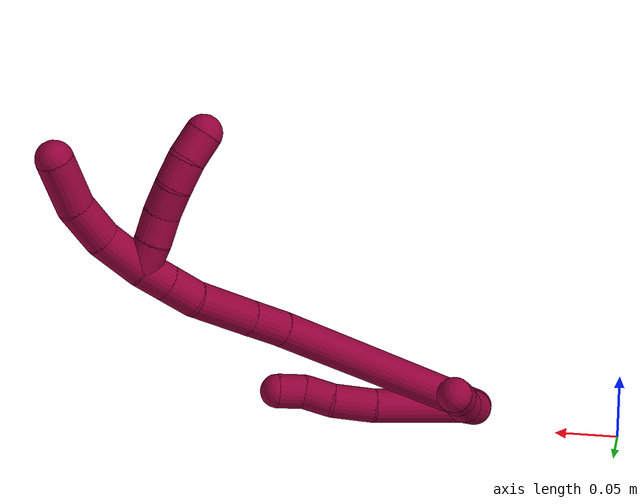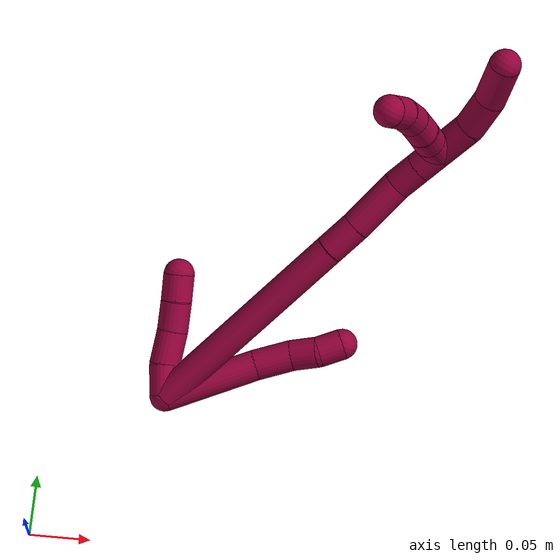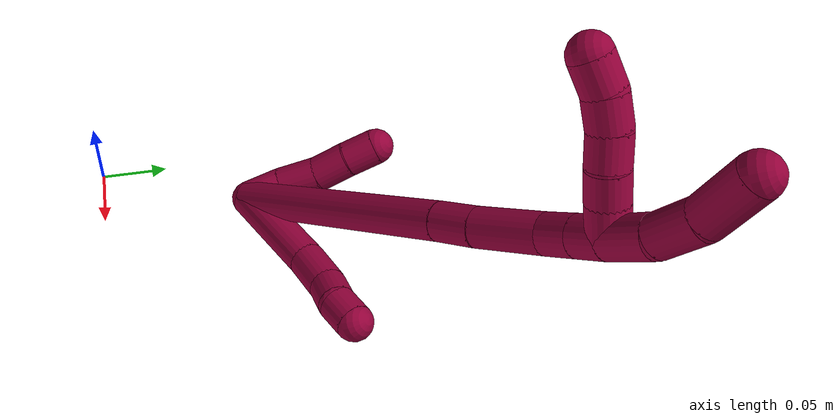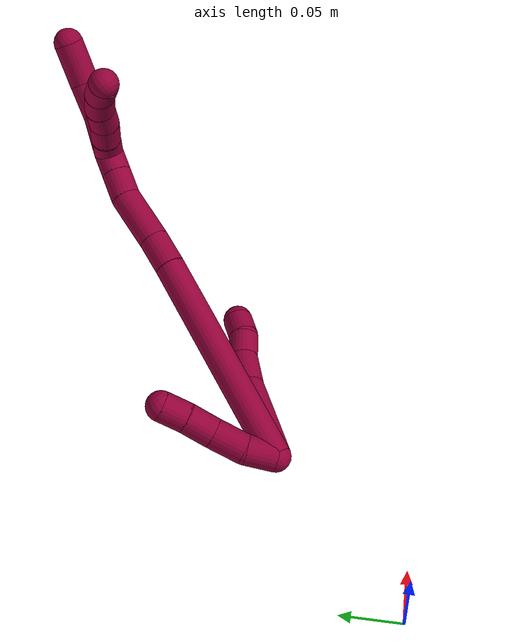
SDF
<sdf version="1.7">
 <world name="default">
  <model name="8">
   <static>0</static>
   <link name="8">
    <collision name="collision-cylinder-e_1_2_8">
     <pose>0.012433 0.024426 0.027188 -0.731933 0.327889 -0.126626</pose>
     <geometry><cylinder><radius>0.0125</radius><length>0.077211</length></cylinder></geometry>
     <surface>
      <friction><ode><mu>1.16</mu><mu2>1.16</mu2><slip1>0</slip1><slip2>0</slip2></ode></friction>
      <contact><ode><kp>1e+06</kp><kd>1</kd><max_vel>0</max_vel><min_depth>0.001</min_depth></ode></contact>
     </surface>
    </collision>
    <visual name="visual-cylinder-e_1_2_8">
     <pose>0.012433 0.024426 0.027188 -0.731933 0.327889 -0.126626</pose>
     <geometry><cylinder><radius>0.0125</radius><length>0.077211</length></cylinder></geometry>
     <material><ambient>0.584314 0 0.227451 1</ambient></material>
    </visual>
    <collision name="collision-cylinder-e_2_8_9">
     <pose>0.031679 0.057514 0.065238 -0.673193 0.455937 -0.162005</pose>
     <geometry><cylinder><radius>0.0125</radius><length>0.030948</length></cylinder></geometry>
     <surface>
      <friction><ode><mu>1.16</mu><mu2>1.16</mu2><slip1>0</slip1><slip2>0</slip2></ode></friction>
      <contact><ode><kp>1e+06</kp><kd>1</kd><max_vel>0</max_vel><min_depth>0.001</min_depth></ode></contact>
     </surface>
    </collision>
    <visual name="visual-cylinder-e_2_8_9">
     <pose>0.031679 0.057514 0.065238 -0.673193 0.455937 -0.162005</pose>
     <geometry><cylinder><radius>0.0125</radius><length>0.030948</length></cylinder></geometry>
     <material><ambient>0.584314 0 0.227451 1</ambient></material>
    </visual>
    <collision name="collision-cylinder-e_3_9_10">
     <pose>0.045231 0.070899 0.083228 -0.585224 0.667513 -0.208155</pose>
     <geometry><cylinder><radius>0.0125</radius><length>0.021773</length></cylinder></geometry>
     <surface>
      <friction><ode><mu>1.16</mu><mu2>1.16</mu2><slip1>0</slip1><slip2>0</slip2></ode></friction>
      <contact><ode><kp>1e+06</kp><kd>1</kd><max_vel>0</max_vel><min_depth>0.001</min_depth></ode></contact>
     </surface>
    </collision>
    <visual name="visual-cylinder-e_3_9_10">
     <pose>0.045231 0.070899 0.083228 -0.585224 0.667513 -0.208155</pose>
     <geometry><cylinder><radius>0.0125</radius><length>0.021773</length></cylinder></geometry>
     <material><ambient>0.584314 0 0.227451 1</ambient></material>
    </visual>
    <collision name="collision-cylinder-e_4_10_6">
     <pose>0.055453 0.081793 0.097459 -0.71516 0.354444 -0.13364</pose>
     <geometry><cylinder><radius>0.0125</radius><length>0.020068</length></cylinder></geometry>
     <surface>
      <friction><ode><mu>1.16</mu><mu2>1.16</mu2><slip1>0</slip1><slip2>0</slip2></ode></friction>
      <contact><ode><kp>1e+06</kp><kd>1</kd><max_vel>0</max_vel><min_depth>0.001</min_depth></ode></contact>
     </surface>
    </collision>
    <visual name="visual-cylinder-e_4_10_6">
     <pose>0.055453 0.081793 0.097459 -0.71516 0.354444 -0.13364</pose>
     <geometry><cylinder><radius>0.0125</radius><length>0.020068</length></cylinder></geometry>
     <material><ambient>0.584314 0 0.227451 1</ambient></material>
    </visual>
    <collision name="collision-cylinder-e_1_2_11">
     <pose>-0.008098 -0.000483 0.00974 0.049557 -0.692998 -0.017897</pose>
     <geometry><cylinder><radius>0.0125</radius><length>0.025351</length></cylinder></geometry>
     <surface>
      <friction><ode><mu>1.16</mu><mu2>1.16</mu2><slip1>0</slip1><slip2>0</slip2></ode></friction>
      <contact><ode><kp>1e+06</kp><kd>1</kd><max_vel>0</max_vel><min_depth>0.001</min_depth></ode></contact>
     </surface>
    </collision>
    <visual name="visual-cylinder-e_1_2_11">
     <pose>-0.008098 -0.000483 0.00974 0.049557 -0.692998 -0.017897</pose>
     <geometry><cylinder><radius>0.0125</radius><length>0.025351</length></cylinder></geometry>
     <material><ambient>0.584314 0 0.227451 1</ambient></material>
    </visual>
    <collision name="collision-cylinder-e_2_11_12">
     <pose>-0.022266 -0.000331 0.032216 -0.049816 -0.444314 0.011255</pose>
     <geometry><cylinder><radius>0.0125</radius><length>0.028248</length></cylinder></geometry>
     <surface>
      <friction><ode><mu>1.16</mu><mu2>1.16</mu2><slip1>0</slip1><slip2>0</slip2></ode></friction>
      <contact><ode><kp>1e+06</kp><kd>1</kd><max_vel>0</max_vel><min_depth>0.001</min_depth></ode></contact>
     </surface>
    </collision>
    <visual name="visual-cylinder-e_2_11_12">
     <pose>-0.022266 -0.000331 0.032216 -0.049816 -0.444314 0.011255</pose>
     <geometry><cylinder><radius>0.0125</radius><length>0.028248</length></cylinder></geometry>
     <material><ambient>0.584314 0 0.227451 1</ambient></material>
    </visual>
    <collision name="collision-cylinder-e_3_12_13">
     <pose>-0.033287 -0.001165 0.056103 0.130999 -0.414588 -0.027589</pose>
     <geometry><cylinder><radius>0.0125</radius><length>0.024575</length></cylinder></geometry>
     <surface>
      <friction><ode><mu>1.16</mu><mu2>1.16</mu2><slip1>0</slip1><slip2>0</slip2></ode></friction>
      <contact><ode><kp>1e+06</kp><kd>1</kd><max_vel>0</max_vel><min_depth>0.001</min_depth></ode></contact>
     </surface>
    </collision>
    <visual name="visual-cylinder-e_3_12_13">
     <pose>-0.033287 -0.001165 0.056103 0.130999 -0.414588 -0.027589</pose>
     <geometry><cylinder><radius>0.0125</radius><length>0.024575</length></cylinder></geometry>
     <material><ambient>0.584314 0 0.227451 1</ambient></material>
    </visual>
    <collision name="collision-cylinder-e_4_13_5">
     <pose>-0.04341 -0.003538 0.076819 0.094251 -0.493939 -0.023779</pose>
     <geometry><cylinder><radius>0.0125</radius><length>0.021826</length></cylinder></geometry>
     <surface>
      <friction><ode><mu>1.16</mu><mu2>1.16</mu2><slip1>0</slip1><slip2>0</slip2></ode></friction>
      <contact><ode><kp>1e+06</kp><kd>1</kd><max_vel>0</max_vel><min_depth>0.001</min_depth></ode></contact>
     </surface>
    </collision>
    <visual name="visual-cylinder-e_4_13_5">
     <pose>-0.04341 -0.003538 0.076819 0.094251 -0.493939 -0.023779</pose>
     <geometry><cylinder><radius>0.0125</radius><length>0.021826</length></cylinder></geometry>
     <material><ambient>0.584314 0 0.227451 1</ambient></material>
    </visual>
    <collision name="collision-cylinder-e_1_2_14">
     <pose>0.0161 0.021812 0.086807 -0.246177 0.177978 -0.022076</pose>
     <geometry><cylinder><radius>0.0125</radius><length>0.181883</length></cylinder></geometry>
     <surface>
      <friction><ode><mu>1.16</mu><mu2>1.16</mu2><slip1>0</slip1><slip2>0</slip2></ode></friction>
      <contact><ode><kp>1e+06</kp><kd>1</kd><max_vel>0</max_vel><min_depth>0.001</min_depth></ode></contact>
     </surface>
    </collision>
    <visual name="visual-cylinder-e_1_2_14">
     <pose>0.0161 0.021812 0.086807 -0.246177 0.177978 -0.022076</pose>
     <geometry><cylinder><radius>0.0125</radius><length>0.181883</length></cylinder></geometry>
     <material><ambient>0.584314 0 0.227451 1</ambient></material>
    </visual>
    <collision name="collision-cylinder-e_2_14_15">
     <pose>0.034363 0.047568 0.187017 -0.286156 0.153543 -0.022162</pose>
     <geometry><cylinder><radius>0.0125</radius><length>0.028276</length></cylinder></geometry>
     <surface>
      <friction><ode><mu>1.16</mu><mu2>1.16</mu2><slip1>0</slip1><slip2>0</slip2></ode></friction>
      <contact><ode><kp>1e+06</kp><kd>1</kd><max_vel>0</max_vel><min_depth>0.001</min_depth></ode></contact>
     </surface>
    </collision>
    <visual name="visual-cylinder-e_2_14_15">
     <pose>0.034363 0.047568 0.187017 -0.286156 0.153543 -0.022162</pose>
     <geometry><cylinder><radius>0.0125</radius><length>0.028276</length></cylinder></geometry>
     <material><ambient>0.584314 0 0.227451 1</ambient></material>
    </visual>
    <collision name="collision-cylinder-e_3_15_16">
     <pose>0.03888 0.057293 0.222576 -0.255248 0.102489 -0.013163</pose>
     <geometry><cylinder><radius>0.0125</radius><length>0.046037</length></cylinder></geometry>
     <surface>
      <friction><ode><mu>1.16</mu><mu2>1.16</mu2><slip1>0</slip1><slip2>0</slip2></ode></friction>
      <contact><ode><kp>1e+06</kp><kd>1</kd><max_vel>0</max_vel><min_depth>0.001</min_depth></ode></contact>
     </surface>
    </collision>
    <visual name="visual-cylinder-e_3_15_16">
     <pose>0.03888 0.057293 0.222576 -0.255248 0.102489 -0.013163</pose>
     <geometry><cylinder><radius>0.0125</radius><length>0.046037</length></cylinder></geometry>
     <material><ambient>0.584314 0 0.227451 1</ambient></material>
    </visual>
    <collision name="collision-cylinder-e_4_16_17">
     <pose>0.044742 0.064721 0.255705 -0.148961 0.306099 -0.02302</pose>
     <geometry><cylinder><radius>0.0125</radius><length>0.023273</length></cylinder></geometry>
     <surface>
      <friction><ode><mu>1.16</mu><mu2>1.16</mu2><slip1>0</slip1><slip2>0</slip2></ode></friction>
      <contact><ode><kp>1e+06</kp><kd>1</kd><max_vel>0</max_vel><min_depth>0.001</min_depth></ode></contact>
     </surface>
    </collision>
    <visual name="visual-cylinder-e_4_16_17">
     <pose>0.044742 0.064721 0.255705 -0.148961 0.306099 -0.02302</pose>
     <geometry><cylinder><radius>0.0125</radius><length>0.023273</length></cylinder></geometry>
     <material><ambient>0.584314 0 0.227451 1</ambient></material>
    </visual>
    <collision name="collision-cylinder-e_5_17_1">
     <pose>0.051346 0.067828 0.276355 -0.149716 0.306512 -0.023168</pose>
     <geometry><cylinder><radius>0.0125</radius><length>0.02053</length></cylinder></geometry>
     <surface>
      <friction><ode><mu>1.16</mu><mu2>1.16</mu2><slip1>0</slip1><slip2>0</slip2></ode></friction>
      <contact><ode><kp>1e+06</kp><kd>1</kd><max_vel>0</max_vel><min_depth>0.001</min_depth></ode></contact>
     </surface>
    </collision>
    <visual name="visual-cylinder-e_5_17_1">
     <pose>0.051346 0.067828 0.276355 -0.149716 0.306512 -0.023168</pose>
     <geometry><cylinder><radius>0.0125</radius><length>0.02053</length></cylinder></geometry>
     <material><ambient>0.584314 0 0.227451 1</ambient></material>
    </visual>
    <collision name="collision-cylinder-e_1_1_18">
     <pose>0.06055 0.069839 0.301609 -0.035392 0.373416 -0.006687</pose>
     <geometry><cylinder><radius>0.0125</radius><length>0.03348</length></cylinder></geometry>
     <surface>
      <friction><ode><mu>1.16</mu><mu2>1.16</mu2><slip1>0</slip1><slip2>0</slip2></ode></friction>
      <contact><ode><kp>1e+06</kp><kd>1</kd><max_vel>0</max_vel><min_depth>0.001</min_depth></ode></contact>
     </surface>
    </collision>
    <visual name="visual-cylinder-e_1_1_18">
     <pose>0.06055 0.069839 0.301609 -0.035392 0.373416 -0.006687</pose>
     <geometry><cylinder><radius>0.0125</radius><length>0.03348</length></cylinder></geometry>
     <material><ambient>0.584314 0 0.227451 1</ambient></material>
    </visual>
    <collision name="collision-cylinder-e_2_18_19">
     <pose>0.070014 0.06752 0.331524 0.197617 0.225676 0.022466</pose>
     <geometry><cylinder><radius>0.0125</radius><length>0.030007</length></cylinder></geometry>
     <surface>
      <friction><ode><mu>1.16</mu><mu2>1.16</mu2><slip1>0</slip1><slip2>0</slip2></ode></friction>
      <contact><ode><kp>1e+06</kp><kd>1</kd><max_vel>0</max_vel><min_depth>0.001</min_depth></ode></contact>
     </surface>
    </collision>
    <visual name="visual-cylinder-e_2_18_19">
     <pose>0.070014 0.06752 0.331524 0.197617 0.225676 0.022466</pose>
     <geometry><cylinder><radius>0.0125</radius><length>0.030007</length></cylinder></geometry>
     <material><ambient>0.584314 0 0.227451 1</ambient></material>
    </visual>
    <collision name="collision-cylinder-e_3_19_4">
     <pose>0.076767 0.056862 0.362022 0.449049 0.187101 0.042848</pose>
     <geometry><cylinder><radius>0.0125</radius><length>0.036513</length></cylinder></geometry>
     <surface>
      <friction><ode><mu>1.16</mu><mu2>1.16</mu2><slip1>0</slip1><slip2>0</slip2></ode></friction>
      <contact><ode><kp>1e+06</kp><kd>1</kd><max_vel>0</max_vel><min_depth>0.001</min_depth></ode></contact>
     </surface>
    </collision>
    <visual name="visual-cylinder-e_3_19_4">
     <pose>0.076767 0.056862 0.362022 0.449049 0.187101 0.042848</pose>
     <geometry><cylinder><radius>0.0125</radius><length>0.036513</length></cylinder></geometry>
     <material><ambient>0.584314 0 0.227451 1</ambient></material>
    </visual>
    <collision name="collision-cylinder-e_1_1_20">
     <pose>0.055228 0.059943 0.289505 1.21503 0.078613 0.054668</pose>
     <geometry><cylinder><radius>0.0125</radius><length>0.02</length></cylinder></geometry>
     <surface>
      <friction><ode><mu>1.16</mu><mu2>1.16</mu2><slip1>0</slip1><slip2>0</slip2></ode></friction>
      <contact><ode><kp>1e+06</kp><kd>1</kd><max_vel>0</max_vel><min_depth>0.001</min_depth></ode></contact>
     </surface>
    </collision>
    <visual name="visual-cylinder-e_1_1_20">
     <pose>0.055228 0.059943 0.289505 1.21503 0.078613 0.054668</pose>
     <geometry><cylinder><radius>0.0125</radius><length>0.02</length></cylinder></geometry>
     <material><ambient>0.584314 0 0.227451 1</ambient></material>
    </visual>
    <collision name="collision-cylinder-e_2_20_21">
     <pose>0.0577 0.041572 0.296937 1.15737 0.169483 0.110874</pose>
     <geometry><cylinder><radius>0.0125</radius><length>0.02</length></cylinder></geometry>
     <surface>
      <friction><ode><mu>1.16</mu><mu2>1.16</mu2><slip1>0</slip1><slip2>0</slip2></ode></friction>
      <contact><ode><kp>1e+06</kp><kd>1</kd><max_vel>0</max_vel><min_depth>0.001</min_depth></ode></contact>
     </surface>
    </collision>
    <visual name="visual-cylinder-e_2_20_21">
     <pose>0.0577 0.041572 0.296937 1.15737 0.169483 0.110874</pose>
     <geometry><cylinder><radius>0.0125</radius><length>0.02</length></cylinder></geometry>
     <material><ambient>0.584314 0 0.227451 1</ambient></material>
    </visual>
    <collision name="collision-cylinder-e_3_21_22">
     <pose>0.05959 0.023347 0.304814 1.16819 0.020327 0.013437</pose>
     <geometry><cylinder><radius>0.0125</radius><length>0.02</length></cylinder></geometry>
     <surface>
      <friction><ode><mu>1.16</mu><mu2>1.16</mu2><slip1>0</slip1><slip2>0</slip2></ode></friction>
      <contact><ode><kp>1e+06</kp><kd>1</kd><max_vel>0</max_vel><min_depth>0.001</min_depth></ode></contact>
     </surface>
    </collision>
    <visual name="visual-cylinder-e_3_21_22">
     <pose>0.05959 0.023347 0.304814 1.16819 0.020327 0.013437</pose>
     <geometry><cylinder><radius>0.0125</radius><length>0.02</length></cylinder></geometry>
     <material><ambient>0.584314 0 0.227451 1</ambient></material>
    </visual>
    <collision name="collision-cylinder-e_4_22_23">
     <pose>0.06115 0.004581 0.311307 1.30784 0.136048 0.104335</pose>
     <geometry><cylinder><radius>0.0125</radius><length>0.02</length></cylinder></geometry>
     <surface>
      <friction><ode><mu>1.16</mu><mu2>1.16</mu2><slip1>0</slip1><slip2>0</slip2></ode></friction>
      <contact><ode><kp>1e+06</kp><kd>1</kd><max_vel>0</max_vel><min_depth>0.001</min_depth></ode></contact>
     </surface>
    </collision>
    <visual name="visual-cylinder-e_4_22_23">
     <pose>0.06115 0.004581 0.311307 1.30784 0.136048 0.104335</pose>
     <geometry><cylinder><radius>0.0125</radius><length>0.02</length></cylinder></geometry>
     <material><ambient>0.584314 0 0.227451 1</ambient></material>
    </visual>
    <collision name="collision-cylinder-e_5_23_3">
     <pose>0.064478 -0.014778 0.314349 1.52321 0.198445 0.189276</pose>
     <geometry><cylinder><radius>0.0125</radius><length>0.02</length></cylinder></geometry>
     <surface>
      <friction><ode><mu>1.16</mu><mu2>1.16</mu2><slip1>0</slip1><slip2>0</slip2></ode></friction>
      <contact><ode><kp>1e+06</kp><kd>1</kd><max_vel>0</max_vel><min_depth>0.001</min_depth></ode></contact>
     </surface>
    </collision>
    <visual name="visual-cylinder-e_5_23_3">
     <pose>0.064478 -0.014778 0.314349 1.52321 0.198445 0.189276</pose>
     <geometry><cylinder><radius>0.0125</radius><length>0.02</length></cylinder></geometry>
     <material><ambient>0.584314 0 0.227451 1</ambient></material>
    </visual>
    <collision name="collision-sphere-3">
     <pose>0.066449 -0.024571 0.314815 0 -0 0</pose>
     <geometry><sphere><radius>0.0125</radius></sphere></geometry>
     <surface>
      <friction><ode><mu>1.16</mu><mu2>1.16</mu2><slip1>0</slip1><slip2>0</slip2></ode></friction>
      <contact><ode><kp>1e+06</kp><kd>1</kd><max_vel>0</max_vel><min_depth>0.001</min_depth></ode></contact>
     </surface>
    </collision>
    <visual name="visual-sphere-3">
     <pose>0.066449 -0.024571 0.314815 0 -0 0</pose>
     <geometry><sphere><radius>0.0125</radius></sphere></geometry>
     <material><ambient>0.584314 0 0.227451 1</ambient></material>
    </visual>
    <collision name="collision-sphere-23">
     <pose>0.062506 -0.004986 0.313882 0 -0 0</pose>
     <geometry><sphere><radius>0.0125</radius></sphere></geometry>
     <surface>
      <friction><ode><mu>1.16</mu><mu2>1.16</mu2><slip1>0</slip1><slip2>0</slip2></ode></friction>
      <contact><ode><kp>1e+06</kp><kd>1</kd><max_vel>0</max_vel><min_depth>0.001</min_depth></ode></contact>
     </surface>
    </collision>
    <visual name="visual-sphere-23">
     <pose>0.062506 -0.004986 0.313882 0 -0 0</pose>
     <geometry><sphere><radius>0.0125</radius></sphere></geometry>
     <material><ambient>0.584314 0 0.227451 1</ambient></material>
    </visual>
    <collision name="collision-sphere-22">
     <pose>0.059794 0.014148 0.308732 0 -0 0</pose>
     <geometry><sphere><radius>0.0125</radius></sphere></geometry>
     <surface>
      <friction><ode><mu>1.16</mu><mu2>1.16</mu2><slip1>0</slip1><slip2>0</slip2></ode></friction>
      <contact><ode><kp>1e+06</kp><kd>1</kd><max_vel>0</max_vel><min_depth>0.001</min_depth></ode></contact>
     </surface>
    </collision>
    <visual name="visual-sphere-22">
     <pose>0.059794 0.014148 0.308732 0 -0 0</pose>
     <geometry><sphere><radius>0.0125</radius></sphere></geometry>
     <material><ambient>0.584314 0 0.227451 1</ambient></material>
    </visual>
    <collision name="collision-sphere-21">
     <pose>0.059387 0.032545 0.300897 0 -0 0</pose>
     <geometry><sphere><radius>0.0125</radius></sphere></geometry>
     <surface>
      <friction><ode><mu>1.16</mu><mu2>1.16</mu2><slip1>0</slip1><slip2>0</slip2></ode></friction>
      <contact><ode><kp>1e+06</kp><kd>1</kd><max_vel>0</max_vel><min_depth>0.001</min_depth></ode></contact>
     </surface>
    </collision>
    <visual name="visual-sphere-21">
     <pose>0.059387 0.032545 0.300897 0 -0 0</pose>
     <geometry><sphere><radius>0.0125</radius></sphere></geometry>
     <material><ambient>0.584314 0 0.227451 1</ambient></material>
    </visual>
    <collision name="collision-sphere-20">
     <pose>0.056014 0.050598 0.292977 0 -0 0</pose>
     <geometry><sphere><radius>0.0125</radius></sphere></geometry>
     <surface>
      <friction><ode><mu>1.16</mu><mu2>1.16</mu2><slip1>0</slip1><slip2>0</slip2></ode></friction>
      <contact><ode><kp>1e+06</kp><kd>1</kd><max_vel>0</max_vel><min_depth>0.001</min_depth></ode></contact>
     </surface>
    </collision>
    <visual name="visual-sphere-20">
     <pose>0.056014 0.050598 0.292977 0 -0 0</pose>
     <geometry><sphere><radius>0.0125</radius></sphere></geometry>
     <material><ambient>0.584314 0 0.227451 1</ambient></material>
    </visual>
    <collision name="collision-sphere-4">
     <pose>0.080163 0.049075 0.378182 0 -0 0</pose>
     <geometry><sphere><radius>0.0125</radius></sphere></geometry>
     <surface>
      <friction><ode><mu>1.16</mu><mu2>1.16</mu2><slip1>0</slip1><slip2>0</slip2></ode></friction>
      <contact><ode><kp>1e+06</kp><kd>1</kd><max_vel>0</max_vel><min_depth>0.001</min_depth></ode></contact>
     </surface>
    </collision>
    <visual name="visual-sphere-4">
     <pose>0.080163 0.049075 0.378182 0 -0 0</pose>
     <geometry><sphere><radius>0.0125</radius></sphere></geometry>
     <material><ambient>0.584314 0 0.227451 1</ambient></material>
    </visual>
    <collision name="collision-sphere-11">
     <pose>-0.016195 -0.000966 0.019479 0 -0 0</pose>
     <geometry><sphere><radius>0.0125</radius></sphere></geometry>
     <surface>
      <friction><ode><mu>1.16</mu><mu2>1.16</mu2><slip1>0</slip1><slip2>0</slip2></ode></friction>
      <contact><ode><kp>1e+06</kp><kd>1</kd><max_vel>0</max_vel><min_depth>0.001</min_depth></ode></contact>
     </surface>
    </collision>
    <visual name="visual-sphere-11">
     <pose>-0.016195 -0.000966 0.019479 0 -0 0</pose>
     <geometry><sphere><radius>0.0125</radius></sphere></geometry>
     <material><ambient>0.584314 0 0.227451 1</ambient></material>
    </visual>
    <collision name="collision-sphere-6">
     <pose>0.058935 0.087963 0.104564 0 -0 0</pose>
     <geometry><sphere><radius>0.0125</radius></sphere></geometry>
     <surface>
      <friction><ode><mu>1.16</mu><mu2>1.16</mu2><slip1>0</slip1><slip2>0</slip2></ode></friction>
      <contact><ode><kp>1e+06</kp><kd>1</kd><max_vel>0</max_vel><min_depth>0.001</min_depth></ode></contact>
     </surface>
    </collision>
    <visual name="visual-sphere-6">
     <pose>0.058935 0.087963 0.104564 0 -0 0</pose>
     <geometry><sphere><radius>0.0125</radius></sphere></geometry>
     <material><ambient>0.584314 0 0.227451 1</ambient></material>
    </visual>
    <collision name="collision-sphere-10">
     <pose>0.05197 0.075622 0.090355 0 -0 0</pose>
     <geometry><sphere><radius>0.0125</radius></sphere></geometry>
     <surface>
      <friction><ode><mu>1.16</mu><mu2>1.16</mu2><slip1>0</slip1><slip2>0</slip2></ode></friction>
      <contact><ode><kp>1e+06</kp><kd>1</kd><max_vel>0</max_vel><min_depth>0.001</min_depth></ode></contact>
     </surface>
    </collision>
    <visual name="visual-sphere-10">
     <pose>0.05197 0.075622 0.090355 0 -0 0</pose>
     <geometry><sphere><radius>0.0125</radius></sphere></geometry>
     <material><ambient>0.584314 0 0.227451 1</ambient></material>
    </visual>
    <collision name="collision-sphere-9">
     <pose>0.038492 0.066176 0.076101 0 -0 0</pose>
     <geometry><sphere><radius>0.0125</radius></sphere></geometry>
     <surface>
      <friction><ode><mu>1.16</mu><mu2>1.16</mu2><slip1>0</slip1><slip2>0</slip2></ode></friction>
      <contact><ode><kp>1e+06</kp><kd>1</kd><max_vel>0</max_vel><min_depth>0.001</min_depth></ode></contact>
     </surface>
    </collision>
    <visual name="visual-sphere-9">
     <pose>0.038492 0.066176 0.076101 0 -0 0</pose>
     <geometry><sphere><radius>0.0125</radius></sphere></geometry>
     <material><ambient>0.584314 0 0.227451 1</ambient></material>
    </visual>
    <collision name="collision-sphere-2">
     <geometry><sphere><radius>0.0125</radius></sphere></geometry>
     <surface>
      <friction><ode><mu>1.16</mu><mu2>1.16</mu2><slip1>0</slip1><slip2>0</slip2></ode></friction>
      <contact><ode><kp>1e+06</kp><kd>1</kd><max_vel>0</max_vel><min_depth>0.001</min_depth></ode></contact>
     </surface>
    </collision>
    <visual name="visual-sphere-2">
     <geometry><sphere><radius>0.0125</radius></sphere></geometry>
     <material><ambient>0.584314 0 0.227451 1</ambient></material>
    </visual>
    <collision name="collision-sphere-19">
     <pose>0.073371 0.064649 0.345863 0 -0 0</pose>
     <geometry><sphere><radius>0.0125</radius></sphere></geometry>
     <surface>
      <friction><ode><mu>1.16</mu><mu2>1.16</mu2><slip1>0</slip1><slip2>0</slip2></ode></friction>
      <contact><ode><kp>1e+06</kp><kd>1</kd><max_vel>0</max_vel><min_depth>0.001</min_depth></ode></contact>
     </surface>
    </collision>
    <visual name="visual-sphere-19">
     <pose>0.073371 0.064649 0.345863 0 -0 0</pose>
     <geometry><sphere><radius>0.0125</radius></sphere></geometry>
     <material><ambient>0.584314 0 0.227451 1</ambient></material>
    </visual>
    <collision name="collision-sphere-8">
     <pose>0.024866 0.048852 0.054376 0 -0 0</pose>
     <geometry><sphere><radius>0.0125</radius></sphere></geometry>
     <surface>
      <friction><ode><mu>1.16</mu><mu2>1.16</mu2><slip1>0</slip1><slip2>0</slip2></ode></friction>
      <contact><ode><kp>1e+06</kp><kd>1</kd><max_vel>0</max_vel><min_depth>0.001</min_depth></ode></contact>
     </surface>
    </collision>
    <visual name="visual-sphere-8">
     <pose>0.024866 0.048852 0.054376 0 -0 0</pose>
     <geometry><sphere><radius>0.0125</radius></sphere></geometry>
     <material><ambient>0.584314 0 0.227451 1</ambient></material>
    </visual>
    <collision name="collision-sphere-12">
     <pose>-0.028337 0.000304 0.044953 0 -0 0</pose>
     <geometry><sphere><radius>0.0125</radius></sphere></geometry>
     <surface>
      <friction><ode><mu>1.16</mu><mu2>1.16</mu2><slip1>0</slip1><slip2>0</slip2></ode></friction>
      <contact><ode><kp>1e+06</kp><kd>1</kd><max_vel>0</max_vel><min_depth>0.001</min_depth></ode></contact>
     </surface>
    </collision>
    <visual name="visual-sphere-12">
     <pose>-0.028337 0.000304 0.044953 0 -0 0</pose>
     <geometry><sphere><radius>0.0125</radius></sphere></geometry>
     <material><ambient>0.584314 0 0.227451 1</ambient></material>
    </visual>
    <collision name="collision-sphere-13">
     <pose>-0.038236 -0.002634 0.067253 0 -0 0</pose>
     <geometry><sphere><radius>0.0125</radius></sphere></geometry>
     <surface>
      <friction><ode><mu>1.16</mu><mu2>1.16</mu2><slip1>0</slip1><slip2>0</slip2></ode></friction>
      <contact><ode><kp>1e+06</kp><kd>1</kd><max_vel>0</max_vel><min_depth>0.001</min_depth></ode></contact>
     </surface>
    </collision>
    <visual name="visual-sphere-13">
     <pose>-0.038236 -0.002634 0.067253 0 -0 0</pose>
     <geometry><sphere><radius>0.0125</radius></sphere></geometry>
     <material><ambient>0.584314 0 0.227451 1</ambient></material>
    </visual>
    <collision name="collision-sphere-5">
     <pose>-0.048584 -0.004443 0.086385 0 -0 0</pose>
     <geometry><sphere><radius>0.0125</radius></sphere></geometry>
     <surface>
      <friction><ode><mu>1.16</mu><mu2>1.16</mu2><slip1>0</slip1><slip2>0</slip2></ode></friction>
      <contact><ode><kp>1e+06</kp><kd>1</kd><max_vel>0</max_vel><min_depth>0.001</min_depth></ode></contact>
     </surface>
    </collision>
    <visual name="visual-sphere-5">
     <pose>-0.048584 -0.004443 0.086385 0 -0 0</pose>
     <geometry><sphere><radius>0.0125</radius></sphere></geometry>
     <material><ambient>0.584314 0 0.227451 1</ambient></material>
    </visual>
    <collision name="collision-sphere-14">
     <pose>0.032201 0.043624 0.173613 0 -0 0</pose>
     <geometry><sphere><radius>0.0125</radius></sphere></geometry>
     <surface>
      <friction><ode><mu>1.16</mu><mu2>1.16</mu2><slip1>0</slip1><slip2>0</slip2></ode></friction>
      <contact><ode><kp>1e+06</kp><kd>1</kd><max_vel>0</max_vel><min_depth>0.001</min_depth></ode></contact>
     </surface>
    </collision>
    <visual name="visual-sphere-14">
     <pose>0.032201 0.043624 0.173613 0 -0 0</pose>
     <geometry><sphere><radius>0.0125</radius></sphere></geometry>
     <material><ambient>0.584314 0 0.227451 1</ambient></material>
    </visual>
    <collision name="collision-sphere-15">
     <pose>0.036525 0.051512 0.200421 0 -0 0</pose>
     <geometry><sphere><radius>0.0125</radius></sphere></geometry>
     <surface>
      <friction><ode><mu>1.16</mu><mu2>1.16</mu2><slip1>0</slip1><slip2>0</slip2></ode></friction>
      <contact><ode><kp>1e+06</kp><kd>1</kd><max_vel>0</max_vel><min_depth>0.001</min_depth></ode></contact>
     </surface>
    </collision>
    <visual name="visual-sphere-15">
     <pose>0.036525 0.051512 0.200421 0 -0 0</pose>
     <geometry><sphere><radius>0.0125</radius></sphere></geometry>
     <material><ambient>0.584314 0 0.227451 1</ambient></material>
    </visual>
    <collision name="collision-sphere-16">
     <pose>0.041235 0.063075 0.244732 0 -0 0</pose>
     <geometry><sphere><radius>0.0125</radius></sphere></geometry>
     <surface>
      <friction><ode><mu>1.16</mu><mu2>1.16</mu2><slip1>0</slip1><slip2>0</slip2></ode></friction>
      <contact><ode><kp>1e+06</kp><kd>1</kd><max_vel>0</max_vel><min_depth>0.001</min_depth></ode></contact>
     </surface>
    </collision>
    <visual name="visual-sphere-16">
     <pose>0.041235 0.063075 0.244732 0 -0 0</pose>
     <geometry><sphere><radius>0.0125</radius></sphere></geometry>
     <material><ambient>0.584314 0 0.227451 1</ambient></material>
    </visual>
    <collision name="collision-sphere-17">
     <pose>0.048248 0.066368 0.266678 0 -0 0</pose>
     <geometry><sphere><radius>0.0125</radius></sphere></geometry>
     <surface>
      <friction><ode><mu>1.16</mu><mu2>1.16</mu2><slip1>0</slip1><slip2>0</slip2></ode></friction>
      <contact><ode><kp>1e+06</kp><kd>1</kd><max_vel>0</max_vel><min_depth>0.001</min_depth></ode></contact>
     </surface>
    </collision>
    <visual name="visual-sphere-17">
     <pose>0.048248 0.066368 0.266678 0 -0 0</pose>
     <geometry><sphere><radius>0.0125</radius></sphere></geometry>
     <material><ambient>0.584314 0 0.227451 1</ambient></material>
    </visual>
    <collision name="collision-sphere-1">
     <pose>0.054443 0.069288 0.286032 0 -0 0</pose>
     <geometry><sphere><radius>0.0125</radius></sphere></geometry>
     <surface>
      <friction><ode><mu>1.16</mu><mu2>1.16</mu2><slip1>0</slip1><slip2>0</slip2></ode></friction>
      <contact><ode><kp>1e+06</kp><kd>1</kd><max_vel>0</max_vel><min_depth>0.001</min_depth></ode></contact>
     </surface>
    </collision>
    <visual name="visual-sphere-1">
     <pose>0.054443 0.069288 0.286032 0 -0 0</pose>
     <geometry><sphere><radius>0.0125</radius></sphere></geometry>
     <material><ambient>0.584314 0 0.227451 1</ambient></material>
    </visual>
    <collision name="collision-sphere-18">
     <pose>0.066657 0.070391 0.317186 0 -0 0</pose>
     <geometry><sphere><radius>0.0125</radius></sphere></geometry>
     <surface>
      <friction><ode><mu>1.16</mu><mu2>1.16</mu2><slip1>0</slip1><slip2>0</slip2></ode></friction>
      <contact><ode><kp>1e+06</kp><kd>1</kd><max_vel>0</max_vel><min_depth>0.001</min_depth></ode></contact>
     </surface>
    </collision>
    <visual name="visual-sphere-18">
     <pose>0.066657 0.070391 0.317186 0 -0 0</pose>
     <geometry><sphere><radius>0.0125</radius></sphere></geometry>
     <material><ambient>0.584314 0 0.227451 1</ambient></material>
    </visual>
    <inertial>
     <pose>0.02949 0.035075 0.158199 0 -0 0</pose>
     <mass>0.75</mass>
     <inertia>
      <ixx>0.000581</ixx>
      <ixy>0</ixy>
      <ixz>0</ixz>
      <iyy>0.000558</iyy>
      <iyz>0</iyz>
      <izz>-0.000208</izz>
     </inertia>
    </inertial>
   </link>
   <pose>0.100992 0.1107 0.056727 -0.876826 -0.350871 -0.830821</pose>
  </model>
 </world>
</sdf>
